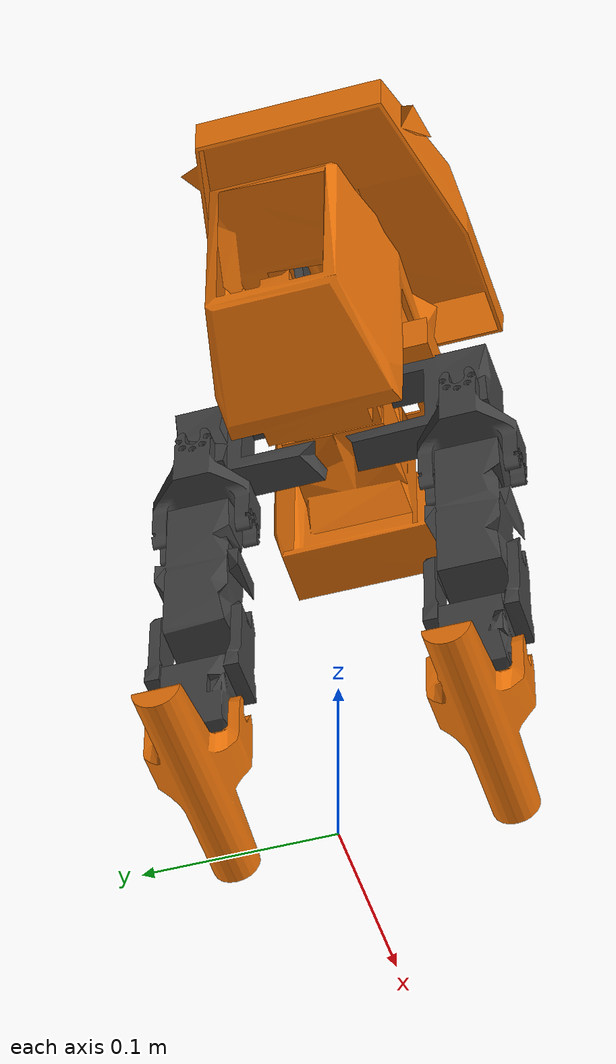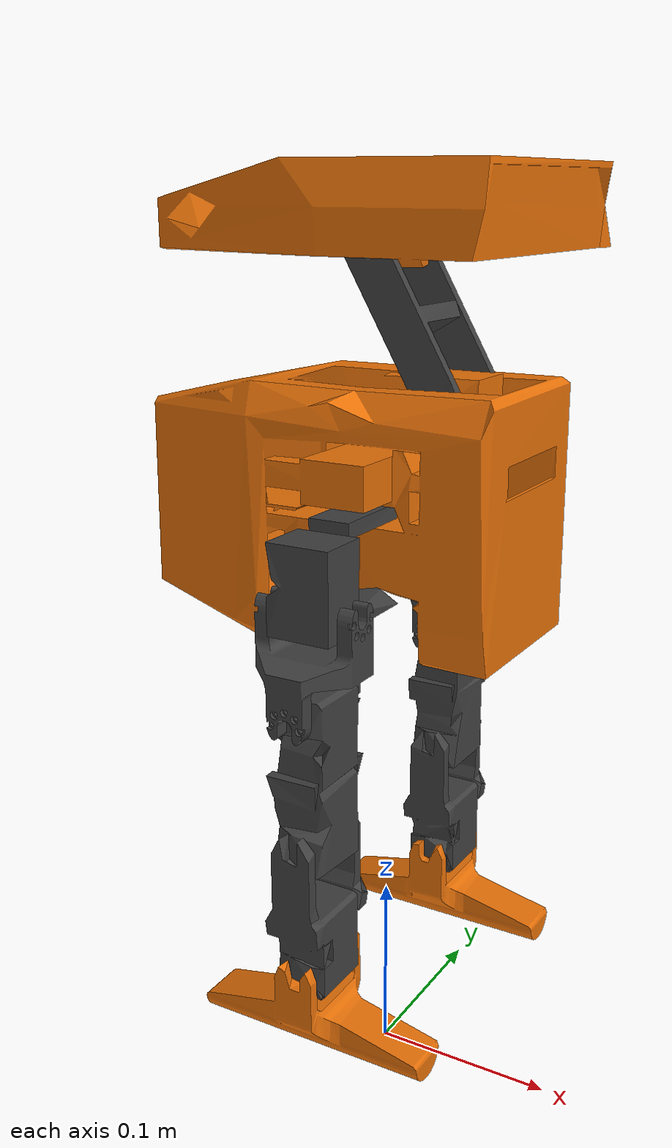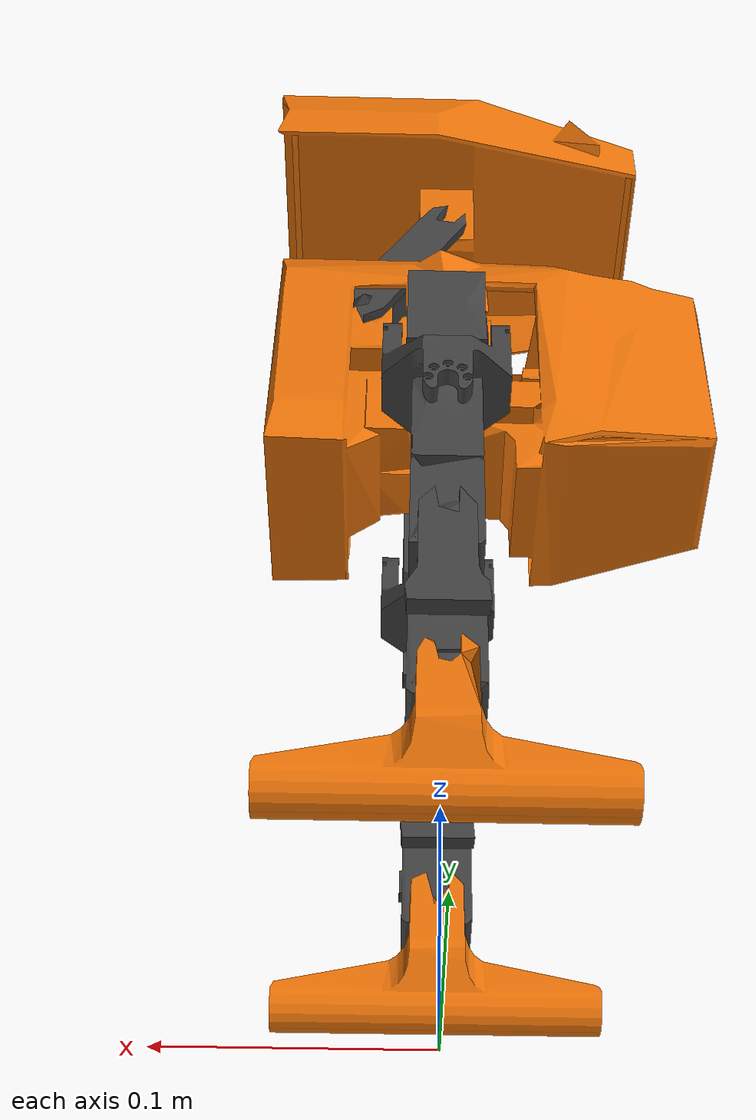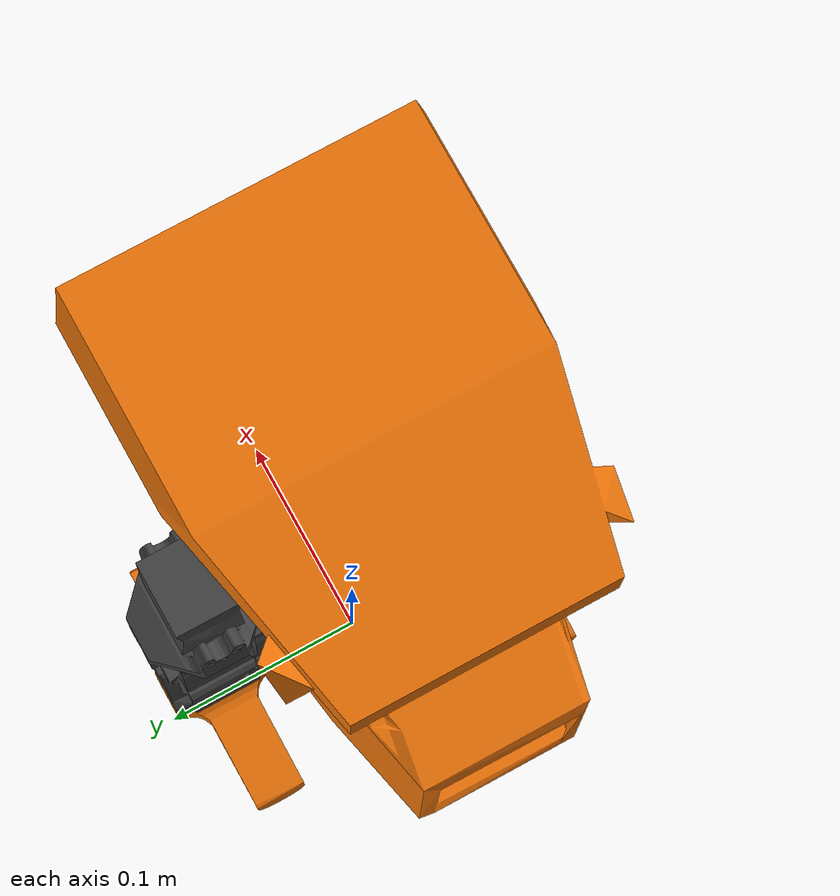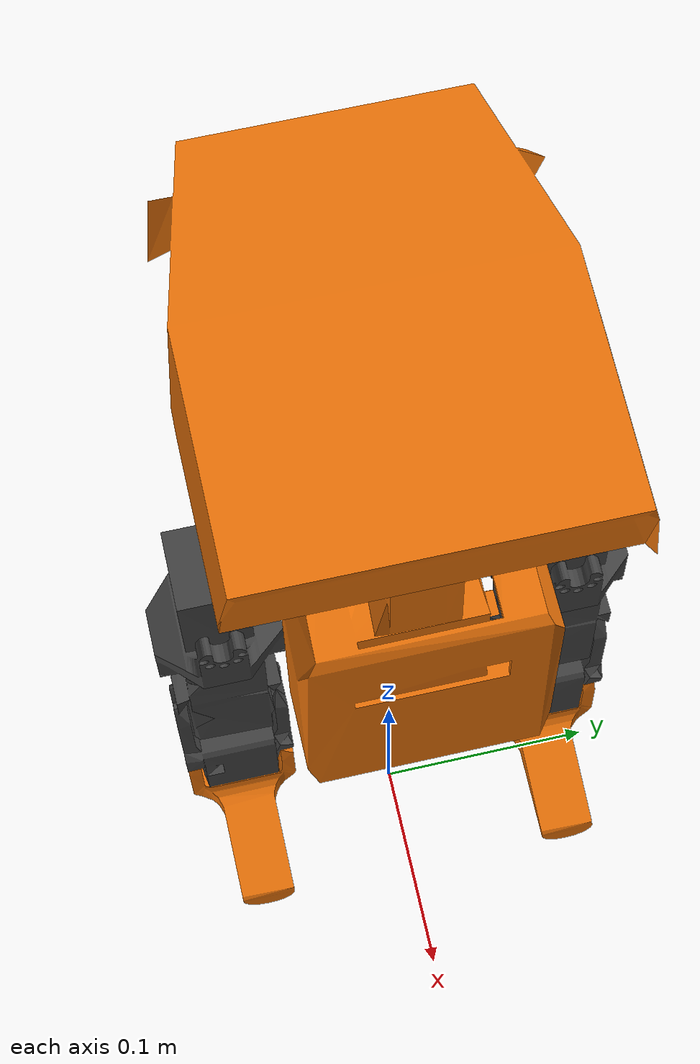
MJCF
<mujoco model="BD-5">

  <compiler angle="radian" autolimits="true"/>
  <option iterations="1" ls_iterations="5" timestep="0.002" integrator="Euler" gravity="0 0 -9.81">
    <flag eulerdamp="disable"/>
  </option>

  <default>
    <geom condim="1" contype="0" conaffinity="0"/>
    <site size="0.01" rgba="1 0 0 1" group="4"/>
    <joint limited="true" damping="1.084" armature="0.045" actuatorfrcrange="-4.1 4.1" frictionloss="0.03"/>
    <position inheritrange="1.0" kp="21.1" kv="0" forcerange="-4.1 4.1"/>
    <equality solref="0.001 2"/>
  </default>

  <asset>
    <mesh name="BODY" file="assets/BODY.STL" maxhullvert="20"/>
    <mesh name="NECK" file="assets/NECK.STL" maxhullvert="20"/>
    <mesh name="HEAD" file="assets/HEAD.STL" maxhullvert="20"/>
    <mesh name="HIP_LEFT" file="assets/HIP_LEFT.STL" maxhullvert="20"/>
    <mesh name="HIP_R_LEFT" file="assets/HIP_R_LEFT.STL" maxhullvert="20"/>
    <mesh name="THIGH_LEFT" file="assets/THIGH_LEFT.STL" maxhullvert="20"/>
    <mesh name="CALF_LEFT" file="assets/CALF_LEFT.STL" maxhullvert="20"/>
    <mesh name="FOOT_LEFT" file="assets/FOOT_LEFT.STL" maxhullvert="20"/>
    <mesh name="HIP_RIGHT" file="assets/HIP_RIGHT.STL" maxhullvert="20"/>
    <mesh name="HIP_R_RIGHT" file="assets/HIP_R_RIGHT.STL" maxhullvert="20"/>
    <mesh name="THIGH_RIGHT" file="assets/THIGH_RIGHT.STL" maxhullvert="20"/>
    <mesh name="CALF_RIGHT" file="assets/CALF_RIGHT.STL" maxhullvert="20"/>
    <mesh name="FOOT_RIGHT" file="assets/FOOT_RIGHT.STL" maxhullvert="20"/>
  </asset>

  <worldbody>
    <body name="root" pos="0 0 0.3170777382037414" quat="1 0 0 0">
      <freejoint name="root" />
      <site name="imu" pos="0 0 0" />
      <camera name="front" mode="trackcom" pos="0 -3.0 0.8170777382037414" xyaxes="1 0 0 0 0 1" />
      <camera name="track" mode="trackcom" pos="0 -3.0 0.8170777382037414" xyaxes="1 0 0 0 0 1" />
      <geom type="mesh" rgba="0.9098 0.44314 0.031373 1" mesh="BODY" />
      <geom type="mesh" rgba="0.25098 0.25098 0.25098 1" mesh="NECK" pos="0.039 -0.0017032 0.06245" quat="0.965768 0 -0.259409 0" />
      <geom type="mesh" rgba="0.9098 0.44314 0.031373 1" mesh="HEAD" pos="-0.00208669 -0.0017032 0.133414" quat="0.999999 0 0.00161 0" />
      <body name="HIP_LEFT" pos="0 0.01425 -0.0436">
        <inertial pos="0.00185 0.05284 0.02786" quat="0.460341 -0.108037 -0.0721488 0.878185" mass="0.101" diaginertia="4.55664e-05 4.08892e-05 2.89285e-05" />
        <joint name="left_hip_yaw" pos="0 0 0" axis="0 0 1" range="-0.37899 0.37899"/>
        <geom type="mesh" rgba="0.25098 0.25098 0.25098 1" mesh="HIP_LEFT" />
        <body name="HIP_R_LEFT" pos="0 0.05925 0.01275">
          <inertial pos="0 0 -0.02515" quat="0.500015 0.499985 -0.500015 0.499985" mass="0.018" diaginertia="7.87081e-06 6.25751e-06 5.92983e-06" />
          <joint name="left_hip_roll" pos="0 0 0" axis="-1 0 0" range="-1.8827 0.38819" />
          <geom type="mesh" rgba="0.25098 0.25098 0.25098 1" mesh="HIP_R_LEFT" />
          <body name="THIGH_LEFT" pos="0 0 -0.05">
            <inertial pos="0 0.00215 -0.03525" quat="0.999988 0 0.0049764 0" mass="0.174" diaginertia="0.000111454 9.33677e-05 5.11876e-05" />
            <joint name="left_hip_pitch" pos="0 0 0" axis="0 1 0" range="-1.7492 1.7492" />
            <geom type="mesh" rgba="0.25098 0.25098 0.25098 1" mesh="THIGH_LEFT" />
            <body name="CALF_LEFT" pos="0 0 -0.0705">
              <inertial pos="0.00034 0.00191 -0.05036" quat="0.900306 0.428328 -0.0231046 -0.0738207" mass="0.098" diaginertia="4.49978e-05 3.42466e-05 2.77625e-05" />
              <joint name="left_knee" pos="0 0 0" axis="0 -1 0" range="0 2.3829" />
              <geom type="mesh" rgba="0.25098 0.25098 0.25098 1" mesh="CALF_LEFT" />
              <body name="FOOT_LEFT" pos="0 0 -0.07064">
                <inertial pos="0 0 -0.03334" quat="0 0.707107 0 0.707107" mass="0.032" diaginertia="3.17443e-05 3.16424e-05 6.9037e-06" />
                <joint name="left_ankle" pos="0 0 0" axis="0 1 0" range="-1.8873 1.8873" />
                <geom type="mesh" rgba="0.9098 0.44314 0.031373 1" mesh="FOOT_LEFT" contype="0" conaffinity="1" friction="0.8 0.02 0.01"/>
              </body>
            </body>
          </body>
        </body>
      </body>
      <body name="HIP_RIGHT" pos="0 -0.01425 -0.0436">
        <inertial pos="0.00185 -0.0535 0.02786" quat="0.649192 0.572543 -0.368859 0.338655" mass="0.101" diaginertia="4.61603e-05 4.12116e-05 2.96353e-05" />
        <joint name="right_hip_yaw" pos="0 0 0" axis="0 0 1" range="-0.37899 0.37899" />
        <geom type="mesh" rgba="0.25098 0.25098 0.25098 1" mesh="HIP_RIGHT" />
        <body name="HIP_R_RIGHT" pos="0 -0.05925 0.01275">
          <inertial pos="0 0 -0.02515" quat="-2.15792e-05 0.707107 2.15792e-05 0.707107" mass="0.018" diaginertia="7.87081e-06 6.25751e-06 5.92983e-06" />
          <joint name="right_hip_roll" pos="0 0 0" axis="1 0 0" range="-1.8827 0.38819" />
          <geom type="mesh" rgba="0.25098 0.25098 0.25098 1" mesh="HIP_R_RIGHT" />
          <body name="THIGH_RIGHT" pos="0 0 -0.05">
            <inertial pos="0 0.00215 -0.03525" quat="0.999988 0 0.0049764 0" mass="0.174" diaginertia="0.000111454 9.33677e-05 5.11876e-05" />
            <joint name="right_hip_pitch" pos="0 0 0" axis="0 1 0" range="-1.7492 1.7492" />
            <geom type="mesh" rgba="0.25098 0.25098 0.25098 1" mesh="THIGH_RIGHT" />
            <body name="CALF_RIGHT" pos="0 0 -0.0705">
              <inertial pos="0.00034 0.00191 -0.05036" quat="0.900306 0.428328 -0.0231046 -0.0738207" mass="0.098" diaginertia="4.49978e-05 3.42466e-05 2.77625e-05" />
              <joint name="right_knee" pos="0 0 0" axis="0 -1 0" range="0 2.3829" />
              <geom type="mesh" rgba="0.25098 0.25098 0.25098 1" mesh="CALF_RIGHT" />
              <body name="FOOT_RIGHT" pos="0 0 -0.07064">
                <inertial pos="0 0 -0.03334" quat="0 0.707107 0 0.707107" mass="0.032" diaginertia="3.17443e-05 3.16424e-05 6.9037e-06" />
                <joint name="right_ankle" pos="0 0 0" axis="0 1 0" range="-1.8873 1.8873" />
                <geom type="mesh" rgba="0.9098 0.44314 0.031373 1" mesh="FOOT_RIGHT" contype="0" conaffinity="1" friction="0.8 0.02 0.01"/>
              </body>
            </body>
          </body>
        </body>
      </body>
    </body>
  </worldbody>

  <actuator>
    <position name="left_hip_yaw" joint="left_hip_yaw" inheritrange="1"/>
    <position name="left_hip_roll" joint="left_hip_roll" inheritrange="1"/>
    <position name="left_hip_pitch" joint="left_hip_pitch" inheritrange="1"/>
    <position name="left_knee" joint="left_knee" inheritrange="1"/>
    <position name="left_ankle" joint="left_ankle" inheritrange="1"/>
    <position name="right_hip_yaw" joint="right_hip_yaw" inheritrange="1"/>
    <position name="right_hip_roll" joint="right_hip_roll" inheritrange="1"/>
    <position name="right_hip_pitch" joint="right_hip_pitch" inheritrange="1"/>
    <position name="right_knee" joint="right_knee" inheritrange="1"/>
    <position name="right_ankle" joint="right_ankle" inheritrange="1"/>
  </actuator>

  <sensor>
    <gyro site="imu" name="gyro"/>
    <velocimeter site="imu" name="local_linvel"/>
    <accelerometer site="imu" name="accelerometer"/>
    <framepos objtype="site" objname="imu" name="position"/>
    <framezaxis objtype="site" objname="imu" name="upvector"/>
    <framexaxis objtype="site" objname="imu" name="forwardvector"/>
    <framelinvel objtype="site" objname="imu" name="global_linvel"/>
    <frameangvel objtype="site" objname="imu" name="global_angvel"/>
    <framequat objtype="site" objname="imu" name="orientation"/>
  </sensor>
</mujoco>
